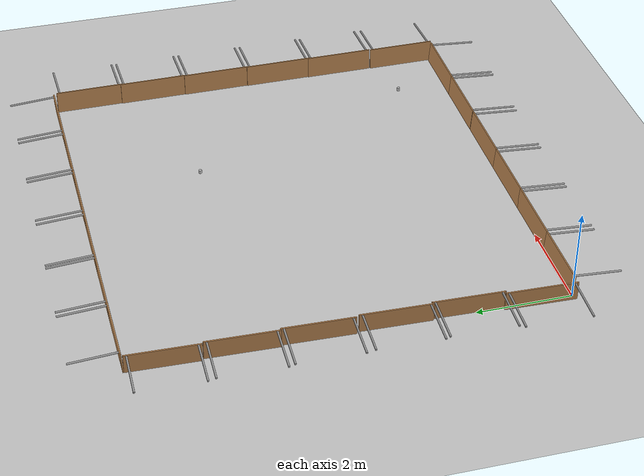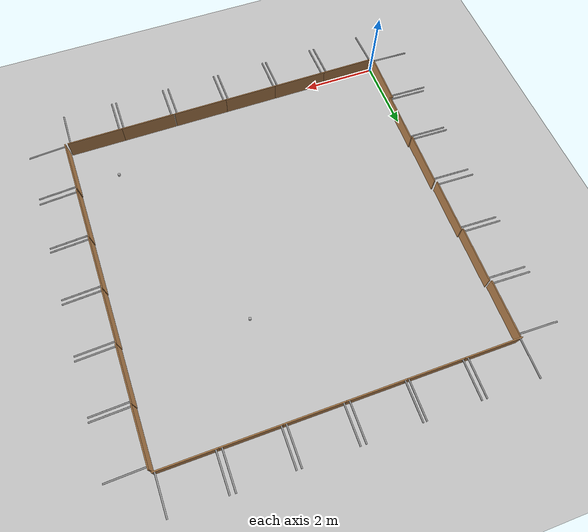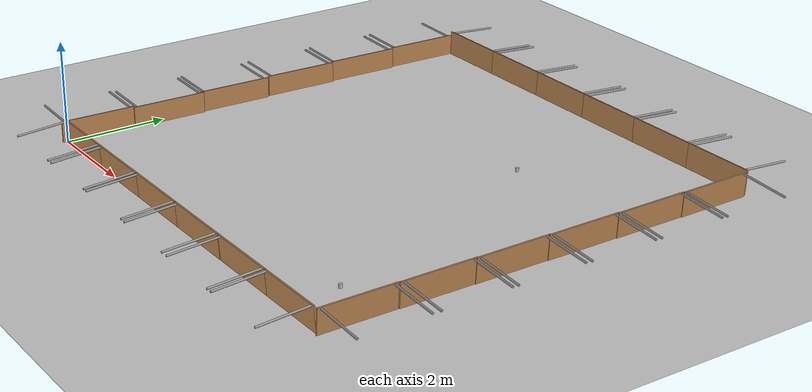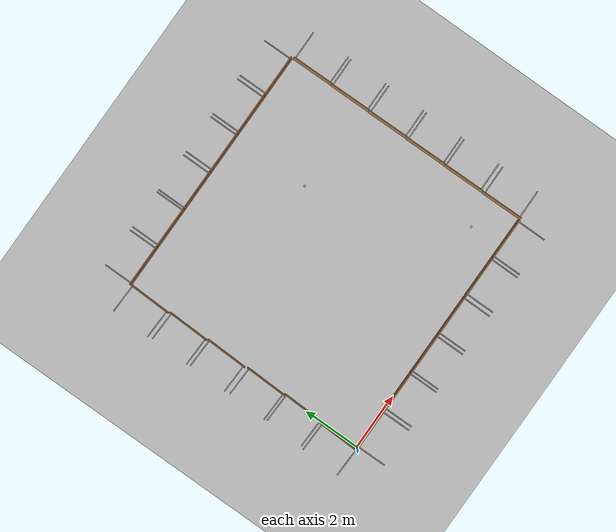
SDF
<sdf version="1.4">
 <world name="default">
  <include><uri>model://ground_plane</uri></include>
  <include><uri>model://sun</uri></include>
  <include><uri>model://beer</uri><name>goal_1</name><pose>7.9 1.1 0 0 0 0</pose></include>
  <include><uri>model://beer</uri><name>goal_2</name><pose>5.87 6.23 0 0 0 0</pose></include>
  <include><uri>model://table</uri><name>table_1</name><pose>0.75 -1 0 -1.5 0 0</pose></include>
  <include><uri>model://table</uri><name>table_2</name><pose>2.25 -1 0 -1.5 0 0</pose></include>
  <include><uri>model://table</uri><name>table_3</name><pose>3.72 -1 0 -1.5 0 0</pose></include>
  <include><uri>model://table</uri><name>table_4</name><pose>5.21 -1 0 -1.5 0 0</pose></include>
  <include><uri>model://table</uri><name>table_5</name><pose>6.73 -1 0 -1.5 0 0</pose></include>
  <include><uri>model://table</uri><name>table_6</name><pose>8.21 -1 0 -1.5 0 0</pose></include>
  <include><uri>model://table</uri><name>table_7</name><pose>10 0.72 0 -1.5 0 1.58</pose></include>
  <include><uri>model://table</uri><name>table_8</name><pose>10 2.24 0 -1.5 0 1.58</pose></include>
  <include><uri>model://table</uri><name>table_9</name><pose>10 3.71 0 -1.5 0 1.58</pose></include>
  <include><uri>model://table</uri><name>table_10</name><pose>10 5.19 0 -1.5 0 1.58</pose></include>
  <include><uri>model://table</uri><name>table_11</name><pose>10 6.67 0 -1.5 0 1.58</pose></include>
  <include><uri>model://table</uri><name>table_12</name><pose>10 8.14 0 -1.5 0 1.58</pose></include>
  <include><uri>model://table</uri><name>table_13</name><pose>8.23 9.92 0 1.5 0 0</pose></include>
  <include><uri>model://table</uri><name>table_14</name><pose>6.73 9.92 0 1.5 0 0</pose></include>
  <include><uri>model://table</uri><name>table_15</name><pose>5.25 9.92 0 1.5 0 0</pose></include>
  <include><uri>model://table</uri><name>table_16</name><pose>3.75 9.92 0 1.5 0 0</pose></include>
  <include><uri>model://table</uri><name>table_17</name><pose>2.3 9.92 0 1.5 0 0</pose></include>
  <include><uri>model://table</uri><name>table_18</name><pose>0.81 9.92 0 1.5 0 0</pose></include>
  <include><uri>model://table</uri><name>table_19</name><pose>-0.95 8.19 0 -1.57 0 -1.6</pose></include>
  <include><uri>model://table</uri><name>table_20</name><pose>-0.95 6.67 0 -1.57 0 -1.6</pose></include>
  <include><uri>model://table</uri><name>table_21</name><pose>-0.95 5.18 0 -1.57 0 -1.6</pose></include>
  <include><uri>model://table</uri><name>table_22</name><pose>-0.95 3.63 0 -1.57 0 -1.6</pose></include>
  <include><uri>model://table</uri><name>table_23</name><pose>-0.95 2.17 0 -1.57 0 -1.6</pose></include>
  <include><uri>model://table</uri><name>table_24</name><pose>-1.05 0.7 0 -1.57 0 -1.6</pose></include>
 </world>
</sdf>

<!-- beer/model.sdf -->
<sdf version='1.4'>
  <model name="beer">
    <link name='link'>
      <pose>0 0 0 0 0 0</pose>
      <inertial>
        <mass>0.390</mass>
        <inertia>
          <ixx>0.00058</ixx>
          <ixy>0</ixy>
          <ixz>0</ixz>
          <iyy>0.00058</iyy>
          <iyz>0</iyz>
          <izz>0.00025</izz>
        </inertia>
      </inertial>
      <collision name='collision'>
        <geometry>
          <cylinder>
            <radius>0.03500</radius>
            <length>0.12000</length>
          </cylinder>
        </geometry>
      </collision>

      <visual name='visual'>
        <geometry>
          <cylinder>
            <radius>0.03500</radius>
            <length>0.12000</length>
          </cylinder>
        </geometry>

        <material>
          <script>
            <uri>model://beer/materials/scripts</uri>
            <uri>model://beer/materials/textures</uri>
            <name>Beer/Diffuse</name>
          </script>
        </material>
      </visual>
    </link>
  </model>
</sdf>

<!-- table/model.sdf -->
<sdf version="1.5">
  <model name="table">
    <static>true</static>
    <link name="link">
      <collision name="surface">
        <pose>0 0 1.0 0 0 0</pose>
        <geometry>
          <box>
            <size>1.5 0.8 0.03</size>
          </box>
        </geometry>
        <surface>
          <friction>
            <ode>
              <mu>0.6</mu>
              <mu2>0.6</mu2>
            </ode>
          </friction>
        </surface>
      </collision>
      <visual name="visual1">
        <pose>0 0 1.0 0 0 0</pose>
        <geometry>
          <box>
            <size>1.5 0.8 0.03</size>
          </box>
        </geometry>
        <material>
          <script>
            <uri>model://media/materials/scripts/gazebo.material</uri>
            <name>Gazebo/Wood</name>
          </script>
        </material>
      </visual>
      <collision name="front_left_leg">
        <pose>0.68 0.38 0.5 0 0 0</pose>
        <geometry>
          <cylinder>
            <radius>0.02</radius>
            <length>1.0</length>
          </cylinder>
        </geometry>
      </collision>
      <visual name="front_left_leg">
        <pose>0.68 0.38 0.5 0 0 0</pose>
        <geometry>
          <cylinder>
            <radius>0.02</radius>
            <length>1.0</length>
          </cylinder>
        </geometry>
        <material>
          <script>
            <uri>model://media/materials/scripts/gazebo.material</uri>
            <name>Gazebo/Grey</name>
          </script>
        </material>
      </visual>
      <collision name="front_right_leg">
        <pose>0.68 -0.38 0.5 0 0 0</pose>
        <geometry>
          <cylinder>
            <radius>0.02</radius>
            <length>1.0</length>
          </cylinder>
        </geometry>
      </collision>
      <visual name="front_right_leg">
        <pose>0.68 -0.38 0.5 0 0 0</pose>
        <geometry>
          <cylinder>
            <radius>0.02</radius>
            <length>1.0</length>
          </cylinder>
        </geometry>
        <material>
          <script>
            <uri>model://media/materials/scripts/gazebo.material</uri>
            <name>Gazebo/Grey</name>
          </script>
        </material>
      </visual>
      <collision name="back_right_leg">
        <pose>-0.68 -0.38 0.5 0 0 0</pose>
        <geometry>
          <cylinder>
            <radius>0.02</radius>
            <length>1.0</length>
          </cylinder>
        </geometry>
      </collision>
      <visual name="back_right_leg">
        <pose>-0.68 -0.38 0.5 0 0 0</pose>
        <geometry>
          <cylinder>
            <radius>0.02</radius>
            <length>1.0</length>
          </cylinder>
        </geometry>
        <material>
          <script>
            <uri>model://media/materials/scripts/gazebo.material</uri>
            <name>Gazebo/Grey</name>
          </script>
        </material>
      </visual>
      <collision name="back_left_leg">
        <pose>-0.68 0.38 0.5 0 0 0</pose>
        <geometry>
          <cylinder>
            <radius>0.02</radius>
            <length>1.0</length>
          </cylinder>
        </geometry>
      </collision>
      <visual name="back_left_leg">
        <pose>-0.68 0.38 0.5 0 0 0</pose>
        <geometry>
          <cylinder>
            <radius>0.02</radius>
            <length>1.0</length>
          </cylinder>
        </geometry>
        <material>
          <script>
            <uri>model://media/materials/scripts/gazebo.material</uri>
            <name>Gazebo/Grey</name>
          </script>
        </material>
      </visual>
    </link>
  </model>
</sdf>
